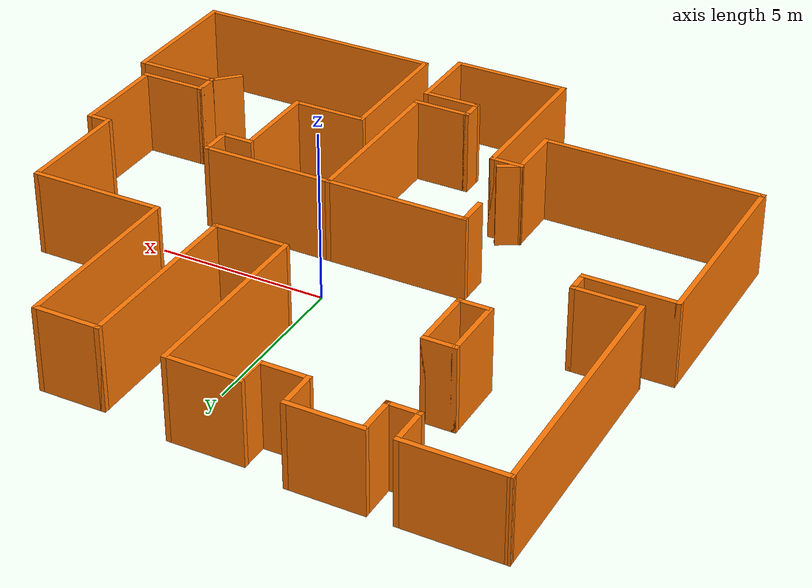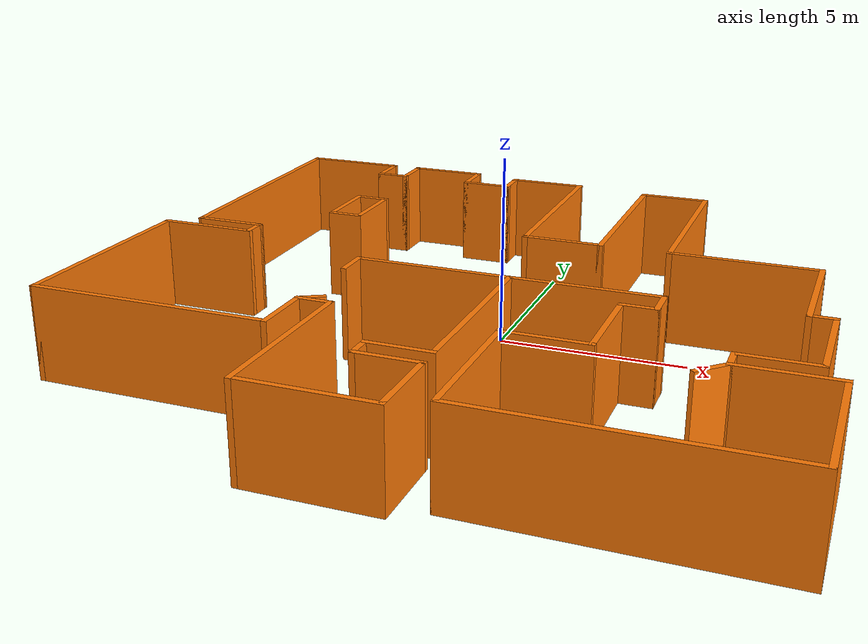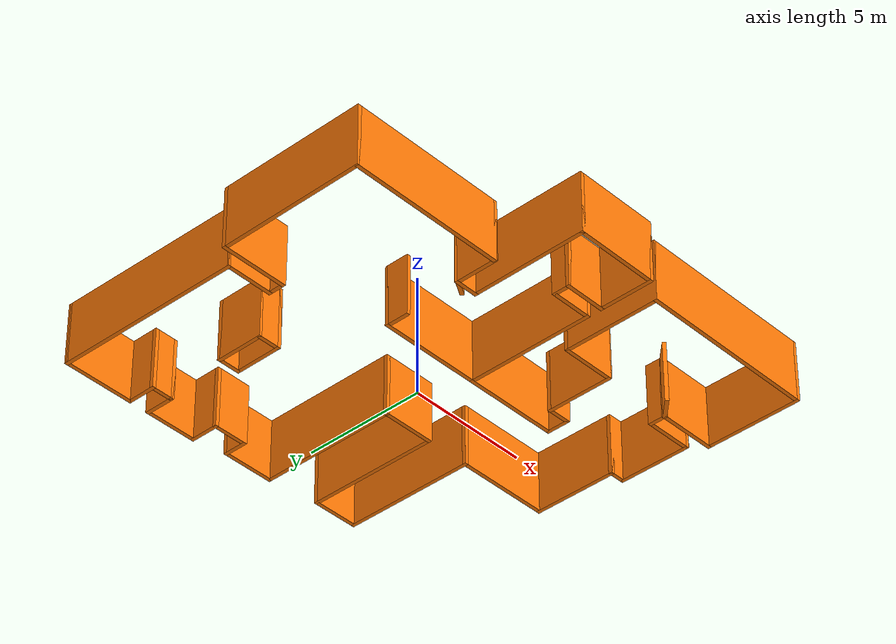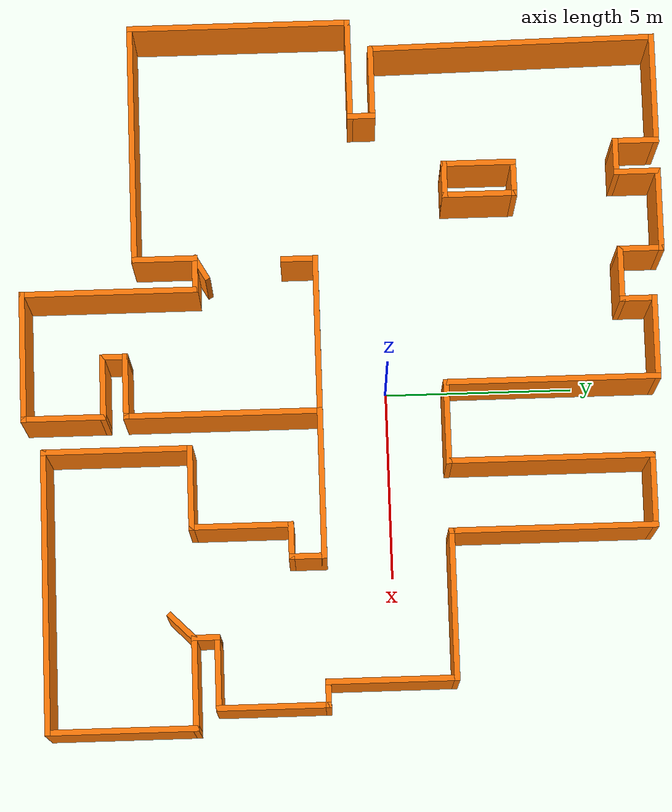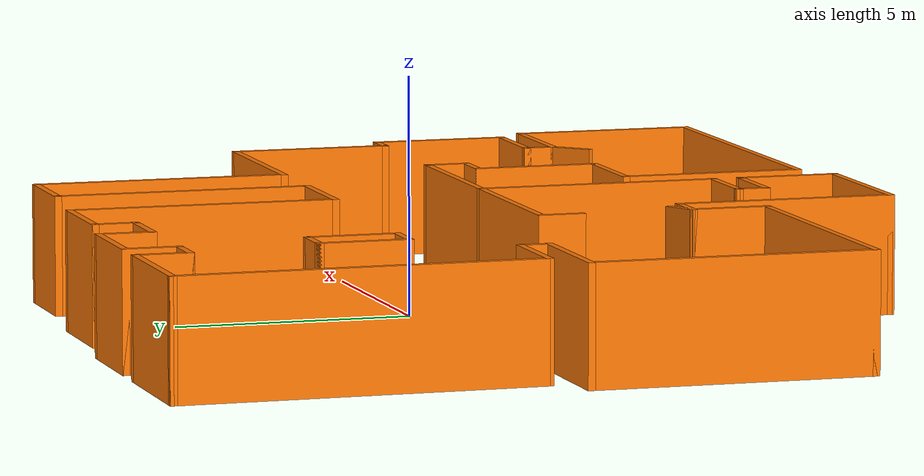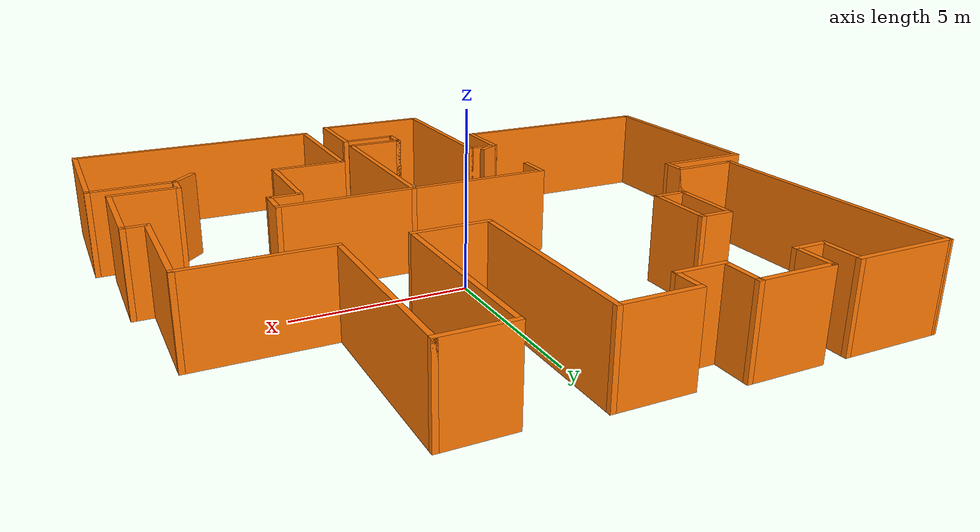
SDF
<?xml version='1.0'?>
<sdf version='1.6'>
  <model name='map_114'>
    <pose frame=''>-0.377222 -1.09087 0 0 -0 0</pose>
    <link name='Wall_13'>
      <collision name='Wall_13_Collision'>
        <geometry>
          <box>
            <size>2 0.15 2.5</size>
          </box>
        </geometry>
        <pose frame=''>0 0 1.25 0 -0 0</pose>
      </collision>
      <visual name='Wall_13_Visual'>
        <pose frame=''>0 0 1.25 0 -0 0</pose>
        <geometry>
          <box>
            <size>2 0.15 2.5</size>
          </box>
        </geometry>
        <material>
          <script>
            <uri>file://media/materials/scripts/gazebo.material</uri>
            <name>Gazebo/Grey</name>
          </script>
          <ambient>0.996078 0.47451 0.0196078 1</ambient>
        </material>
        <meta>
          <layer>0</layer>
        </meta>
      </visual>
      <pose frame=''>-7.725 0.949507 0 0 -0 0</pose>
    </link>
    <link name='Wall_14'>
      <collision name='Wall_14_Collision'>
        <geometry>
          <box>
            <size>0.75 0.15 2.5</size>
          </box>
        </geometry>
        <pose frame=''>0 0 1.25 0 -0 0</pose>
      </collision>
      <visual name='Wall_14_Visual'>
        <pose frame=''>0 0 1.25 0 -0 0</pose>
        <geometry>
          <box>
            <size>0.75 0.15 2.5</size>
          </box>
        </geometry>
        <material>
          <script>
            <uri>file://media/materials/scripts/gazebo.material</uri>
            <name>Gazebo/Grey</name>
          </script>
          <ambient>0.996078 0.47451 0.0196078 1</ambient>
        </material>
        <meta>
          <layer>0</layer>
        </meta>
      </visual>
      <pose frame=''>-6.8 0.649507 0 0 -0 -1.5708</pose>
    </link>
    <link name='Wall_15'>
      <collision name='Wall_15_Collision'>
        <geometry>
          <box>
            <size>2.75 0.15 2.5</size>
          </box>
        </geometry>
        <pose frame=''>0 0 1.25 0 -0 0</pose>
      </collision>
      <visual name='Wall_15_Visual'>
        <pose frame=''>0 0 1.25 0 -0 0</pose>
        <geometry>
          <box>
            <size>2.75 0.15 2.5</size>
          </box>
        </geometry>
        <material>
          <script>
            <uri>file://media/materials/scripts/gazebo.material</uri>
            <name>Gazebo/Grey</name>
          </script>
          <ambient>0.996078 0.47451 0.0196078 1</ambient>
        </material>
        <meta>
          <layer>0</layer>
        </meta>
      </visual>
      <pose frame=''>-8.1 0.349507 0 0 -0 3.14159</pose>
    </link>
    <link name='Wall_16'>
      <collision name='Wall_16_Collision'>
        <geometry>
          <box>
            <size>6 0.15 2.5</size>
          </box>
        </geometry>
        <pose frame=''>0 0 1.25 0 -0 0</pose>
      </collision>
      <visual name='Wall_16_Visual'>
        <pose frame=''>0 0 1.25 0 -0 0</pose>
        <geometry>
          <box>
            <size>6 0.15 2.5</size>
          </box>
        </geometry>
        <material>
          <script>
            <uri>file://media/materials/scripts/gazebo.material</uri>
            <name>Gazebo/Grey</name>
          </script>
          <ambient>0.996078 0.47451 0.0196078 1</ambient>
        </material>
        <meta>
          <layer>0</layer>
        </meta>
      </visual>
      <pose frame=''>-9.4 -2.57549 0 0 -0 -1.5708</pose>
    </link>
    <link name='Wall_17'>
      <collision name='Wall_17_Collision'>
        <geometry>
          <box>
            <size>6.5 0.15 2.5</size>
          </box>
        </geometry>
        <pose frame=''>0 0 1.25 0 -0 0</pose>
      </collision>
      <visual name='Wall_17_Visual'>
        <pose frame=''>0 0 1.25 0 -0 0</pose>
        <geometry>
          <box>
            <size>6.5 0.15 2.5</size>
          </box>
        </geometry>
        <material>
          <script>
            <uri>file://media/materials/scripts/gazebo.material</uri>
            <name>Gazebo/Grey</name>
          </script>
          <ambient>0.996078 0.47451 0.0196078 1</ambient>
        </material>
        <meta>
          <layer>0</layer>
        </meta>
      </visual>
      <pose frame=''>-6.225 -5.50049 0 0 -0 0</pose>
    </link>
    <link name='Wall_21'>
      <collision name='Wall_21_Collision'>
        <geometry>
          <box>
            <size>3.5 0.15 2.5</size>
          </box>
        </geometry>
        <pose frame=''>0 0 1.25 0 -0 0</pose>
      </collision>
      <visual name='Wall_21_Visual'>
        <pose frame=''>0 0 1.25 0 -0 0</pose>
        <geometry>
          <box>
            <size>3.5 0.15 2.5</size>
          </box>
        </geometry>
        <material>
          <script>
            <uri>file://media/materials/scripts/gazebo.material</uri>
            <name>Gazebo/Grey</name>
          </script>
          <ambient>0.996078 0.47451 0.0196078 1</ambient>
        </material>
        <meta>
          <layer>0</layer>
        </meta>
      </visual>
      <pose frame=''>-0.525 -8.50049 0 0 -0 0</pose>
    </link>
    <link name='Wall_22'>
      <collision name='Wall_22_Collision'>
        <geometry>
          <box>
            <size>2.25 0.15 2.5</size>
          </box>
        </geometry>
        <pose frame=''>0 0 1.25 0 -0 0</pose>
      </collision>
      <visual name='Wall_22_Visual'>
        <pose frame=''>0 0 1.25 0 -0 0</pose>
        <geometry>
          <box>
            <size>2.25 0.15 2.5</size>
          </box>
        </geometry>
        <material>
          <script>
            <uri>file://media/materials/scripts/gazebo.material</uri>
            <name>Gazebo/Grey</name>
          </script>
          <ambient>0.996078 0.47451 0.0196078 1</ambient>
        </material>
        <meta>
          <layer>0</layer>
        </meta>
      </visual>
      <pose frame=''>1.15 -7.45049 0 0 -0 1.5708</pose>
    </link>
    <link name='Wall_23'>
      <collision name='Wall_23_Collision'>
        <geometry>
          <box>
            <size>1.75 0.15 2.5</size>
          </box>
        </geometry>
        <pose frame=''>0 0 1.25 0 -0 0</pose>
      </collision>
      <visual name='Wall_23_Visual'>
        <pose frame=''>0 0 1.25 0 -0 0</pose>
        <geometry>
          <box>
            <size>1.75 0.15 2.5</size>
          </box>
        </geometry>
        <material>
          <script>
            <uri>file://media/materials/scripts/gazebo.material</uri>
            <name>Gazebo/Grey</name>
          </script>
          <ambient>0.996078 0.47451 0.0196078 1</ambient>
        </material>
        <meta>
          <layer>0</layer>
        </meta>
      </visual>
      <pose frame=''>0.35 -6.40049 0 0 -0 3.14159</pose>
    </link>
    <link name='Wall_24'>
      <collision name='Wall_24_Collision'>
        <geometry>
          <box>
            <size>0.75 0.15 2.5</size>
          </box>
        </geometry>
        <pose frame=''>0 0 1.25 0 -0 0</pose>
      </collision>
      <visual name='Wall_24_Visual'>
        <pose frame=''>0 0 1.25 0 -0 0</pose>
        <geometry>
          <box>
            <size>0.75 0.15 2.5</size>
          </box>
        </geometry>
        <material>
          <script>
            <uri>file://media/materials/scripts/gazebo.material</uri>
            <name>Gazebo/Grey</name>
          </script>
          <ambient>0.996078 0.47451 0.0196078 1</ambient>
        </material>
        <meta>
          <layer>0</layer>
        </meta>
      </visual>
      <pose frame=''>-0.45 -6.10049 0 0 -0 1.5708</pose>
    </link>
    <link name='Wall_25'>
      <collision name='Wall_25_Collision'>
        <geometry>
          <box>
            <size>1.75 0.15 2.5</size>
          </box>
        </geometry>
        <pose frame=''>0 0 1.25 0 -0 0</pose>
      </collision>
      <visual name='Wall_25_Visual'>
        <pose frame=''>0 0 1.25 0 -0 0</pose>
        <geometry>
          <box>
            <size>1.75 0.15 2.5</size>
          </box>
        </geometry>
        <material>
          <script>
            <uri>file://media/materials/scripts/gazebo.material</uri>
            <name>Gazebo/Grey</name>
          </script>
          <ambient>0.996078 0.47451 0.0196078 1</ambient>
        </material>
        <meta>
          <layer>0</layer>
        </meta>
      </visual>
      <pose frame=''>0.35 -5.80049 0 0 -0 0</pose>
    </link>
    <link name='Wall_26'>
      <collision name='Wall_26_Collision'>
        <geometry>
          <box>
            <size>5.25 0.15 2.5</size>
          </box>
        </geometry>
        <pose frame=''>0 0 1.25 0 -0 0</pose>
      </collision>
      <visual name='Wall_26_Visual'>
        <pose frame=''>0 0 1.25 0 -0 0</pose>
        <geometry>
          <box>
            <size>5.25 0.15 2.5</size>
          </box>
        </geometry>
        <material>
          <script>
            <uri>file://media/materials/scripts/gazebo.material</uri>
            <name>Gazebo/Grey</name>
          </script>
          <ambient>0.996078 0.47451 0.0196078 1</ambient>
        </material>
        <meta>
          <layer>0</layer>
        </meta>
      </visual>
      <pose frame=''>1.15 -3.25049 0 0 -0 1.5708</pose>
    </link>
    <link name='Wall_27'>
      <collision name='Wall_27_Collision'>
        <geometry>
          <box>
            <size>4.25 0.15 2.5</size>
          </box>
        </geometry>
        <pose frame=''>0 0 1.25 0 -0 0</pose>
      </collision>
      <visual name='Wall_27_Visual'>
        <pose frame=''>0 0 1.25 0 -0 0</pose>
        <geometry>
          <box>
            <size>4.25 0.15 2.5</size>
          </box>
        </geometry>
        <material>
          <script>
            <uri>file://media/materials/scripts/gazebo.material</uri>
            <name>Gazebo/Grey</name>
          </script>
          <ambient>0.996078 0.47451 0.0196078 1</ambient>
        </material>
        <meta>
          <layer>0</layer>
        </meta>
      </visual>
      <pose frame=''>-0.9 -0.700493 0 0 -0 3.14159</pose>
    </link>
    <link name='Wall_28'>
      <collision name='Wall_28_Collision'>
        <geometry>
          <box>
            <size>1 0.15 2.5</size>
          </box>
        </geometry>
        <pose frame=''>0 0 1.25 0 -0 0</pose>
      </collision>
      <visual name='Wall_28_Visual'>
        <pose frame=''>0 0 1.25 0 -0 0</pose>
        <geometry>
          <box>
            <size>1 0.15 2.5</size>
          </box>
        </geometry>
        <material>
          <script>
            <uri>file://media/materials/scripts/gazebo.material</uri>
            <name>Gazebo/Grey</name>
          </script>
          <ambient>0.996078 0.47451 0.0196078 1</ambient>
        </material>
        <meta>
          <layer>0</layer>
        </meta>
      </visual>
      <pose frame=''>-2.95 -1.12549 0 0 -0 -1.5708</pose>
    </link>
    <link name='Wall_30'>
      <collision name='Wall_30_Collision'>
        <geometry>
          <box>
            <size>1.75 0.15 2.5</size>
          </box>
        </geometry>
        <pose frame=''>0 0 1.25 0 -0 0</pose>
      </collision>
      <visual name='Wall_30_Visual'>
        <pose frame=''>0 0 1.25 0 -0 0</pose>
        <geometry>
          <box>
            <size>1.75 0.15 2.5</size>
          </box>
        </geometry>
        <material>
          <script>
            <uri>file://media/materials/scripts/gazebo.material</uri>
            <name>Gazebo/Grey</name>
          </script>
          <ambient>0.996078 0.47451 0.0196078 1</ambient>
        </material>
        <meta>
          <layer>0</layer>
        </meta>
      </visual>
      <pose frame=''>-3.05 -4.70049 0 0 -0 1.5708</pose>
    </link>
    <link name='Wall_31'>
      <collision name='Wall_31_Collision'>
        <geometry>
          <box>
            <size>1 0.15 2.5</size>
          </box>
        </geometry>
        <pose frame=''>0 0 1.25 0 -0 0</pose>
      </collision>
      <visual name='Wall_31_Visual'>
        <pose frame=''>0 0 1.25 0 -0 0</pose>
        <geometry>
          <box>
            <size>1 0.15 2.5</size>
          </box>
        </geometry>
        <material>
          <script>
            <uri>file://media/materials/scripts/gazebo.material</uri>
            <name>Gazebo/Grey</name>
          </script>
          <ambient>0.996078 0.47451 0.0196078 1</ambient>
        </material>
        <meta>
          <layer>0</layer>
        </meta>
      </visual>
      <pose frame=''>-2.625 -3.90049 0 0 -0 0</pose>
    </link>
    <link name='Wall_33'>
      <collision name='Wall_33_Collision'>
        <geometry>
          <box>
            <size>4.75 0.15 2.5</size>
          </box>
        </geometry>
        <pose frame=''>0 0 1.25 0 -0 0</pose>
      </collision>
      <visual name='Wall_33_Visual'>
        <pose frame=''>0 0 1.25 0 -0 0</pose>
        <geometry>
          <box>
            <size>4.75 0.15 2.5</size>
          </box>
        </geometry>
        <material>
          <script>
            <uri>file://media/materials/scripts/gazebo.material</uri>
            <name>Gazebo/Grey</name>
          </script>
          <ambient>0.996078 0.47451 0.0196078 1</ambient>
        </material>
        <meta>
          <layer>0</layer>
        </meta>
      </visual>
      <pose frame=''>-2.2 -6.20049 0 0 -0 -1.5708</pose>
    </link>
    <link name='Wall_39'>
      <collision name='Wall_39_Collision'>
        <geometry>
          <box>
            <size>4 0.15 2.5</size>
          </box>
        </geometry>
        <pose frame=''>0 0 1.25 0 -0 0</pose>
      </collision>
      <visual name='Wall_39_Visual'>
        <pose frame=''>0 0 1.25 0 -0 0</pose>
        <geometry>
          <box>
            <size>4 0.15 2.5</size>
          </box>
        </geometry>
        <material>
          <script>
            <uri>file://media/materials/scripts/gazebo.material</uri>
            <name>Gazebo/Grey</name>
          </script>
          <ambient>0.996078 0.47451 0.0196078 1</ambient>
        </material>
        <meta>
          <layer>0</layer>
        </meta>
      </visual>
      <pose frame=''>3.075 -0.700493 0 0 -0 0</pose>
    </link>
    <link name='Wall_40'>
      <collision name='Wall_40_Collision'>
        <geometry>
          <box>
            <size>1 0.15 2.5</size>
          </box>
        </geometry>
        <pose frame=''>0 0 1.25 0 -0 0</pose>
      </collision>
      <visual name='Wall_40_Visual'>
        <pose frame=''>0 0 1.25 0 -0 0</pose>
        <geometry>
          <box>
            <size>1 0.15 2.5</size>
          </box>
        </geometry>
        <material>
          <script>
            <uri>file://media/materials/scripts/gazebo.material</uri>
            <name>Gazebo/Grey</name>
          </script>
          <ambient>0.996078 0.47451 0.0196078 1</ambient>
        </material>
        <meta>
          <layer>0</layer>
        </meta>
      </visual>
      <pose frame=''>5 -1.12549 0 0 -0 -1.5708</pose>
    </link>
    <link name='Wall_41'>
      <collision name='Wall_41_Collision'>
        <geometry>
          <box>
            <size>1 0.15 2.5</size>
          </box>
        </geometry>
        <pose frame=''>0 0 1.25 0 -0 0</pose>
      </collision>
      <visual name='Wall_41_Visual'>
        <pose frame=''>0 0 1.25 0 -0 0</pose>
        <geometry>
          <box>
            <size>1 0.15 2.5</size>
          </box>
        </geometry>
        <material>
          <script>
            <uri>file://media/materials/scripts/gazebo.material</uri>
            <name>Gazebo/Grey</name>
          </script>
          <ambient>0.996078 0.47451 0.0196078 1</ambient>
        </material>
        <meta>
          <layer>0</layer>
        </meta>
      </visual>
      <pose frame=''>4.575 -1.55049 0 0 -0 3.14159</pose>
    </link>
    <link name='Wall_42'>
      <collision name='Wall_42_Collision'>
        <geometry>
          <box>
            <size>2.75 0.15 2.5</size>
          </box>
        </geometry>
        <pose frame=''>0 0 1.25 0 -0 0</pose>
      </collision>
      <visual name='Wall_42_Visual'>
        <pose frame=''>0 0 1.25 0 -0 0</pose>
        <geometry>
          <box>
            <size>2.75 0.15 2.5</size>
          </box>
        </geometry>
        <material>
          <script>
            <uri>file://media/materials/scripts/gazebo.material</uri>
            <name>Gazebo/Grey</name>
          </script>
          <ambient>0.996078 0.47451 0.0196078 1</ambient>
        </material>
        <meta>
          <layer>0</layer>
        </meta>
      </visual>
      <pose frame=''>4.15 -2.85049 0 0 -0 -1.5708</pose>
    </link>
    <link name='Wall_43'>
      <collision name='Wall_43_Collision'>
        <geometry>
          <box>
            <size>2.25 0.15 2.5</size>
          </box>
        </geometry>
        <pose frame=''>0 0 1.25 0 -0 0</pose>
      </collision>
      <visual name='Wall_43_Visual'>
        <pose frame=''>0 0 1.25 0 -0 0</pose>
        <geometry>
          <box>
            <size>2.25 0.15 2.5</size>
          </box>
        </geometry>
        <material>
          <script>
            <uri>file://media/materials/scripts/gazebo.material</uri>
            <name>Gazebo/Grey</name>
          </script>
          <ambient>0.996078 0.47451 0.0196078 1</ambient>
        </material>
        <meta>
          <layer>0</layer>
        </meta>
      </visual>
      <pose frame=''>3.1 -4.15049 0 0 -0 3.14159</pose>
    </link>
    <link name='Wall_44'>
      <collision name='Wall_44_Collision'>
        <geometry>
          <box>
            <size>4 0.15 2.5</size>
          </box>
        </geometry>
        <pose frame=''>0 0 1.25 0 -0 0</pose>
      </collision>
      <visual name='Wall_44_Visual'>
        <pose frame=''>0 0 1.25 0 -0 0</pose>
        <geometry>
          <box>
            <size>4 0.15 2.5</size>
          </box>
        </geometry>
        <material>
          <script>
            <uri>file://media/materials/scripts/gazebo.material</uri>
            <name>Gazebo/Grey</name>
          </script>
          <ambient>0.996078 0.47451 0.0196078 1</ambient>
        </material>
        <meta>
          <layer>0</layer>
        </meta>
      </visual>
      <pose frame=''>2.05 -6.07549 0 0 -0 -1.5708</pose>
    </link>
    <link name='Wall_45'>
      <collision name='Wall_45_Collision'>
        <geometry>
          <box>
            <size>7.5 0.15 2.5</size>
          </box>
        </geometry>
        <pose frame=''>0 0 1.25 0 -0 0</pose>
      </collision>
      <visual name='Wall_45_Visual'>
        <pose frame=''>0 0 1.25 0 -0 0</pose>
        <geometry>
          <box>
            <size>7.5 0.15 2.5</size>
          </box>
        </geometry>
        <material>
          <script>
            <uri>file://media/materials/scripts/gazebo.material</uri>
            <name>Gazebo/Grey</name>
          </script>
          <ambient>0.996078 0.47451 0.0196078 1</ambient>
        </material>
        <meta>
          <layer>0</layer>
        </meta>
      </visual>
      <pose frame=''>5.725 -8.00049 0 0 -0 0</pose>
    </link>
    <link name='Wall_46'>
      <collision name='Wall_46_Collision'>
        <geometry>
          <box>
            <size>4 0.15 2.5</size>
          </box>
        </geometry>
        <pose frame=''>0 0 1.25 0 -0 0</pose>
      </collision>
      <visual name='Wall_46_Visual'>
        <pose frame=''>0 0 1.25 0 -0 0</pose>
        <geometry>
          <box>
            <size>4 0.15 2.5</size>
          </box>
        </geometry>
        <material>
          <script>
            <uri>file://media/materials/scripts/gazebo.material</uri>
            <name>Gazebo/Grey</name>
          </script>
          <ambient>0.996078 0.47451 0.0196078 1</ambient>
        </material>
        <meta>
          <layer>0</layer>
        </meta>
      </visual>
      <pose frame=''>9.4 -6.07549 0 0 -0 1.5708</pose>
    </link>
    <link name='Wall_47'>
      <collision name='Wall_47_Collision'>
        <geometry>
          <box>
            <size>2.5 0.15 2.5</size>
          </box>
        </geometry>
        <pose frame=''>0 0 1.25 0 -0 0</pose>
      </collision>
      <visual name='Wall_47_Visual'>
        <pose frame=''>0 0 1.25 0 -0 0</pose>
        <geometry>
          <box>
            <size>2.5 0.15 2.5</size>
          </box>
        </geometry>
        <material>
          <script>
            <uri>file://media/materials/scripts/gazebo.material</uri>
            <name>Gazebo/Grey</name>
          </script>
          <ambient>0.996078 0.47451 0.0196078 1</ambient>
        </material>
        <meta>
          <layer>0</layer>
        </meta>
      </visual>
      <pose frame=''>8.225 -4.15049 0 0 -0 3.14159</pose>
    </link>
    <link name='Wall_48'>
      <collision name='Wall_48_Collision'>
        <geometry>
          <box>
            <size>0.75 0.15 2.5</size>
          </box>
        </geometry>
        <pose frame=''>0 0 1.25 0 -0 0</pose>
      </collision>
      <visual name='Wall_48_Visual'>
        <pose frame=''>0 0 1.25 0 -0 0</pose>
        <geometry>
          <box>
            <size>0.75 0.15 2.5</size>
          </box>
        </geometry>
        <material>
          <script>
            <uri>file://media/materials/scripts/gazebo.material</uri>
            <name>Gazebo/Grey</name>
          </script>
          <ambient>0.996078 0.47451 0.0196078 1</ambient>
        </material>
        <meta>
          <layer>0</layer>
        </meta>
      </visual>
      <pose frame=''>7.05 -3.85049 0 0 -0 1.5708</pose>
    </link>
    <link name='Wall_49'>
      <collision name='Wall_49_Collision'>
        <geometry>
          <box>
            <size>2 0.15 2.5</size>
          </box>
        </geometry>
        <pose frame=''>0 0 1.25 0 -0 0</pose>
      </collision>
      <visual name='Wall_49_Visual'>
        <pose frame=''>0 0 1.25 0 -0 0</pose>
        <geometry>
          <box>
            <size>2 0.15 2.5</size>
          </box>
        </geometry>
        <material>
          <script>
            <uri>file://media/materials/scripts/gazebo.material</uri>
            <name>Gazebo/Grey</name>
          </script>
          <ambient>0.996078 0.47451 0.0196078 1</ambient>
        </material>
        <meta>
          <layer>0</layer>
        </meta>
      </visual>
      <pose frame=''>7.975 -3.55049 0 0 -0 0</pose>
    </link>
    <link name='Wall_50'>
      <collision name='Wall_50_Collision'>
        <geometry>
          <box>
            <size>3 0.15 2.5</size>
          </box>
        </geometry>
        <pose frame=''>0 0 1.25 0 -0 0</pose>
      </collision>
      <visual name='Wall_50_Visual'>
        <pose frame=''>0 0 1.25 0 -0 0</pose>
        <geometry>
          <box>
            <size>3 0.15 2.5</size>
          </box>
        </geometry>
        <material>
          <script>
            <uri>file://media/materials/scripts/gazebo.material</uri>
            <name>Gazebo/Grey</name>
          </script>
          <ambient>0.996078 0.47451 0.0196078 1</ambient>
        </material>
        <meta>
          <layer>0</layer>
        </meta>
      </visual>
      <pose frame=''>8.9 -2.12549 0 0 -0 1.5708</pose>
    </link>
    <link name='Wall_51'>
      <collision name='Wall_51_Collision'>
        <geometry>
          <box>
            <size>0.75 0.15 2.5</size>
          </box>
        </geometry>
        <pose frame=''>0 0 1.25 0 -0 0</pose>
      </collision>
      <visual name='Wall_51_Visual'>
        <pose frame=''>0 0 1.25 0 -0 0</pose>
        <geometry>
          <box>
            <size>0.75 0.15 2.5</size>
          </box>
        </geometry>
        <material>
          <script>
            <uri>file://media/materials/scripts/gazebo.material</uri>
            <name>Gazebo/Grey</name>
          </script>
          <ambient>0.996078 0.47451 0.0196078 1</ambient>
        </material>
        <meta>
          <layer>0</layer>
        </meta>
      </visual>
      <pose frame=''>8.6 -0.700493 0 0 -0 3.14159</pose>
    </link>
    <link name='Wall_57'>
      <collision name='Wall_57_Collision'>
        <geometry>
          <box>
            <size>3.5 0.15 2.5</size>
          </box>
        </geometry>
        <pose frame=''>0 0 1.25 0 -0 0</pose>
      </collision>
      <visual name='Wall_57_Visual'>
        <pose frame=''>0 0 1.25 0 -0 0</pose>
        <geometry>
          <box>
            <size>3.5 0.15 2.5</size>
          </box>
        </geometry>
        <material>
          <script>
            <uri>file://media/materials/scripts/gazebo.material</uri>
            <name>Gazebo/Grey</name>
          </script>
          <ambient>0.996078 0.47451 0.0196078 1</ambient>
        </material>
        <meta>
          <layer>0</layer>
        </meta>
      </visual>
      <pose frame=''>8.3 0.974507 0 0 -0 1.5708</pose>
    </link>
    <link name='Wall_58'>
      <collision name='Wall_58_Collision'>
        <geometry>
          <box>
            <size>4 0.15 2.5</size>
          </box>
        </geometry>
        <pose frame=''>0 0 1.25 0 -0 0</pose>
      </collision>
      <visual name='Wall_58_Visual'>
        <pose frame=''>0 0 1.25 0 -0 0</pose>
        <geometry>
          <box>
            <size>4 0.15 2.5</size>
          </box>
        </geometry>
        <material>
          <script>
            <uri>file://media/materials/scripts/gazebo.material</uri>
            <name>Gazebo/Grey</name>
          </script>
          <ambient>0.996078 0.47451 0.0196078 1</ambient>
        </material>
        <meta>
          <layer>0</layer>
        </meta>
      </visual>
      <pose frame=''>6.375 2.64951 0 0 -0 3.14159</pose>
    </link>
    <link name='Wall_59'>
      <collision name='Wall_59_Collision'>
        <geometry>
          <box>
            <size>5.5 0.15 2.5</size>
          </box>
        </geometry>
        <pose frame=''>0 0 1.25 0 -0 0</pose>
      </collision>
      <visual name='Wall_59_Visual'>
        <pose frame=''>0 0 1.25 0 -0 0</pose>
        <geometry>
          <box>
            <size>5.5 0.15 2.5</size>
          </box>
        </geometry>
        <material>
          <script>
            <uri>file://media/materials/scripts/gazebo.material</uri>
            <name>Gazebo/Grey</name>
          </script>
          <ambient>0.996078 0.47451 0.0196078 1</ambient>
        </material>
        <meta>
          <layer>0</layer>
        </meta>
      </visual>
      <pose frame=''>4.45 5.32451 0 0 -0 1.5708</pose>
    </link>
    <link name='Wall_60'>
      <collision name='Wall_60_Collision'>
        <geometry>
          <box>
            <size>2 0.15 2.5</size>
          </box>
        </geometry>
        <pose frame=''>0 0 1.25 0 -0 0</pose>
      </collision>
      <visual name='Wall_60_Visual'>
        <pose frame=''>0 0 1.25 0 -0 0</pose>
        <geometry>
          <box>
            <size>2 0.15 2.5</size>
          </box>
        </geometry>
        <material>
          <script>
            <uri>file://media/materials/scripts/gazebo.material</uri>
            <name>Gazebo/Grey</name>
          </script>
          <ambient>0.996078 0.47451 0.0196078 1</ambient>
        </material>
        <meta>
          <layer>0</layer>
        </meta>
      </visual>
      <pose frame=''>3.525 7.99951 0 0 -0 3.14159</pose>
    </link>
    <link name='Wall_61'>
      <collision name='Wall_61_Collision'>
        <geometry>
          <box>
            <size>5.5 0.15 2.5</size>
          </box>
        </geometry>
        <pose frame=''>0 0 1.25 0 -0 0</pose>
      </collision>
      <visual name='Wall_61_Visual'>
        <pose frame=''>0 0 1.25 0 -0 0</pose>
        <geometry>
          <box>
            <size>5.5 0.15 2.5</size>
          </box>
        </geometry>
        <material>
          <script>
            <uri>file://media/materials/scripts/gazebo.material</uri>
            <name>Gazebo/Grey</name>
          </script>
          <ambient>0.996078 0.47451 0.0196078 1</ambient>
        </material>
        <meta>
          <layer>0</layer>
        </meta>
      </visual>
      <pose frame=''>2.6 5.32451 0 0 -0 -1.5708</pose>
    </link>
    <link name='Wall_62'>
      <collision name='Wall_62_Collision'>
        <geometry>
          <box>
            <size>2.25 0.15 2.5</size>
          </box>
        </geometry>
        <pose frame=''>0 0 1.25 0 -0 0</pose>
      </collision>
      <visual name='Wall_62_Visual'>
        <pose frame=''>0 0 1.25 0 -0 0</pose>
        <geometry>
          <box>
            <size>2.25 0.15 2.5</size>
          </box>
        </geometry>
        <material>
          <script>
            <uri>file://media/materials/scripts/gazebo.material</uri>
            <name>Gazebo/Grey</name>
          </script>
          <ambient>0.996078 0.47451 0.0196078 1</ambient>
        </material>
        <meta>
          <layer>0</layer>
        </meta>
      </visual>
      <pose frame=''>1.55 2.64951 0 0 -0 3.14159</pose>
    </link>
    <link name='Wall_63'>
      <collision name='Wall_63_Collision'>
        <geometry>
          <box>
            <size>5.75 0.15 2.5</size>
          </box>
        </geometry>
        <pose frame=''>0 0 1.25 0 -0 0</pose>
      </collision>
      <visual name='Wall_63_Visual'>
        <pose frame=''>0 0 1.25 0 -0 0</pose>
        <geometry>
          <box>
            <size>5.75 0.15 2.5</size>
          </box>
        </geometry>
        <material>
          <script>
            <uri>file://media/materials/scripts/gazebo.material</uri>
            <name>Gazebo/Grey</name>
          </script>
          <ambient>0.996078 0.47451 0.0196078 1</ambient>
        </material>
        <meta>
          <layer>0</layer>
        </meta>
      </visual>
      <pose frame=''>0.5 5.44951 0 0 -0 1.5708</pose>
    </link>
    <link name='Wall_64'>
      <collision name='Wall_64_Collision'>
        <geometry>
          <box>
            <size>2.25 0.15 2.5</size>
          </box>
        </geometry>
        <pose frame=''>0 0 1.25 0 -0 0</pose>
      </collision>
      <visual name='Wall_64_Visual'>
        <pose frame=''>0 0 1.25 0 -0 0</pose>
        <geometry>
          <box>
            <size>2.25 0.15 2.5</size>
          </box>
        </geometry>
        <material>
          <script>
            <uri>file://media/materials/scripts/gazebo.material</uri>
            <name>Gazebo/Grey</name>
          </script>
          <ambient>0.996078 0.47451 0.0196078 1</ambient>
        </material>
        <meta>
          <layer>0</layer>
        </meta>
      </visual>
      <pose frame=''>-0.55 8.24951 0 0 -0 3.14159</pose>
    </link>
    <link name='Wall_65'>
      <collision name='Wall_65_Collision'>
        <geometry>
          <box>
            <size>1 0.15 2.5</size>
          </box>
        </geometry>
        <pose frame=''>0 0 1.25 0 -0 0</pose>
      </collision>
      <visual name='Wall_65_Visual'>
        <pose frame=''>0 0 1.25 0 -0 0</pose>
        <geometry>
          <box>
            <size>1 0.15 2.5</size>
          </box>
        </geometry>
        <material>
          <script>
            <uri>file://media/materials/scripts/gazebo.material</uri>
            <name>Gazebo/Grey</name>
          </script>
          <ambient>0.996078 0.47451 0.0196078 1</ambient>
        </material>
        <meta>
          <layer>0</layer>
        </meta>
      </visual>
      <pose frame=''>-1.6 7.82451 0 0 -0 -1.5708</pose>
    </link>
    <link name='Wall_66'>
      <collision name='Wall_66_Collision'>
        <geometry>
          <box>
            <size>1.5 0.15 2.5</size>
          </box>
        </geometry>
        <pose frame=''>0 0 1.25 0 -0 0</pose>
      </collision>
      <visual name='Wall_66_Visual'>
        <pose frame=''>0 0 1.25 0 -0 0</pose>
        <geometry>
          <box>
            <size>1.5 0.15 2.5</size>
          </box>
        </geometry>
        <material>
          <script>
            <uri>file://media/materials/scripts/gazebo.material</uri>
            <name>Gazebo/Grey</name>
          </script>
          <ambient>0.996078 0.47451 0.0196078 1</ambient>
        </material>
        <meta>
          <layer>0</layer>
        </meta>
      </visual>
      <pose frame=''>-2.275 7.39951 0 0 -0 3.14159</pose>
    </link>
    <link name='Wall_67'>
      <collision name='Wall_67_Collision'>
        <geometry>
          <box>
            <size>1.25 0.15 2.5</size>
          </box>
        </geometry>
        <pose frame=''>0 0 1.25 0 -0 0</pose>
      </collision>
      <visual name='Wall_67_Visual'>
        <pose frame=''>0 0 1.25 0 -0 0</pose>
        <geometry>
          <box>
            <size>1.25 0.15 2.5</size>
          </box>
        </geometry>
        <material>
          <script>
            <uri>file://media/materials/scripts/gazebo.material</uri>
            <name>Gazebo/Grey</name>
          </script>
          <ambient>0.996078 0.47451 0.0196078 1</ambient>
        </material>
        <meta>
          <layer>0</layer>
        </meta>
      </visual>
      <pose frame=''>-2.95 7.94951 0 0 -0 1.5708</pose>
    </link>
    <link name='Wall_68'>
      <collision name='Wall_68_Collision'>
        <geometry>
          <box>
            <size>2.25 0.15 2.5</size>
          </box>
        </geometry>
        <pose frame=''>0 0 1.25 0 -0 0</pose>
      </collision>
      <visual name='Wall_68_Visual'>
        <pose frame=''>0 0 1.25 0 -0 0</pose>
        <geometry>
          <box>
            <size>2.25 0.15 2.5</size>
          </box>
        </geometry>
        <material>
          <script>
            <uri>file://media/materials/scripts/gazebo.material</uri>
            <name>Gazebo/Grey</name>
          </script>
          <ambient>0.996078 0.47451 0.0196078 1</ambient>
        </material>
        <meta>
          <layer>0</layer>
        </meta>
      </visual>
      <pose frame=''>-4 8.49951 0 0 -0 3.14159</pose>
    </link>
    <link name='Wall_69'>
      <collision name='Wall_69_Collision'>
        <geometry>
          <box>
            <size>1.25 0.15 2.5</size>
          </box>
        </geometry>
        <pose frame=''>0 0 1.25 0 -0 0</pose>
      </collision>
      <visual name='Wall_69_Visual'>
        <pose frame=''>0 0 1.25 0 -0 0</pose>
        <geometry>
          <box>
            <size>1.25 0.15 2.5</size>
          </box>
        </geometry>
        <material>
          <script>
            <uri>file://media/materials/scripts/gazebo.material</uri>
            <name>Gazebo/Grey</name>
          </script>
          <ambient>0.996078 0.47451 0.0196078 1</ambient>
        </material>
        <meta>
          <layer>0</layer>
        </meta>
      </visual>
      <pose frame=''>-5.05 7.94951 0 0 -0 -1.5708</pose>
    </link>
    <link name='Wall_70'>
      <collision name='Wall_70_Collision'>
        <geometry>
          <box>
            <size>1 0.15 2.5</size>
          </box>
        </geometry>
        <pose frame=''>0 0 1.25 0 -0 0</pose>
      </collision>
      <visual name='Wall_70_Visual'>
        <pose frame=''>0 0 1.25 0 -0 0</pose>
        <geometry>
          <box>
            <size>1 0.15 2.5</size>
          </box>
        </geometry>
        <material>
          <script>
            <uri>file://media/materials/scripts/gazebo.material</uri>
            <name>Gazebo/Grey</name>
          </script>
          <ambient>0.996078 0.47451 0.0196078 1</ambient>
        </material>
        <meta>
          <layer>0</layer>
        </meta>
      </visual>
      <pose frame=''>-5.475 7.39951 0 0 -0 3.14159</pose>
    </link>
    <link name='Wall_71'>
      <collision name='Wall_71_Collision'>
        <geometry>
          <box>
            <size>1.25 0.15 2.5</size>
          </box>
        </geometry>
        <pose frame=''>0 0 1.25 0 -0 0</pose>
      </collision>
      <visual name='Wall_71_Visual'>
        <pose frame=''>0 0 1.25 0 -0 0</pose>
        <geometry>
          <box>
            <size>1.25 0.15 2.5</size>
          </box>
        </geometry>
        <material>
          <script>
            <uri>file://media/materials/scripts/gazebo.material</uri>
            <name>Gazebo/Grey</name>
          </script>
          <ambient>0.996078 0.47451 0.0196078 1</ambient>
        </material>
        <meta>
          <layer>0</layer>
        </meta>
      </visual>
      <pose frame=''>-5.9 7.94951 0 0 -0 1.5708</pose>
    </link>
    <link name='Wall_72'>
      <collision name='Wall_72_Collision'>
        <geometry>
          <box>
            <size>3 0.15 2.5</size>
          </box>
        </geometry>
        <pose frame=''>0 0 1.25 0 -0 0</pose>
      </collision>
      <visual name='Wall_72_Visual'>
        <pose frame=''>0 0 1.25 0 -0 0</pose>
        <geometry>
          <box>
            <size>3 0.15 2.5</size>
          </box>
        </geometry>
        <material>
          <script>
            <uri>file://media/materials/scripts/gazebo.material</uri>
            <name>Gazebo/Grey</name>
          </script>
          <ambient>0.996078 0.47451 0.0196078 1</ambient>
        </material>
        <meta>
          <layer>0</layer>
        </meta>
      </visual>
      <pose frame=''>-7.325 8.49951 0 0 -0 3.14159</pose>
    </link>
    <link name='Wall_75'>
      <collision name='Wall_75_Collision'>
        <geometry>
          <box>
            <size>7.70066 0.15 2.5</size>
          </box>
        </geometry>
        <pose frame=''>0 0 1.25 0 -0 0</pose>
      </collision>
      <visual name='Wall_75_Visual'>
        <pose frame=''>0 0 1.25 0 -0 0</pose>
        <geometry>
          <box>
            <size>7.70066 0.15 2.5</size>
          </box>
        </geometry>
        <material>
          <script>
            <uri>file://media/materials/scripts/gazebo.material</uri>
            <name>Gazebo/Grey</name>
          </script>
          <ambient>0.996078 0.47451 0.0196078 1</ambient>
        </material>
        <meta>
          <layer>0</layer>
        </meta>
      </visual>
      <pose frame=''>-8.7 4.72451 0 0 -0 -1.55755</pose>
    </link>
    <link name='Wall_77'>
      <collision name='Wall_77_Collision'>
        <geometry>
          <box>
            <size>0.75 0.15 2.5</size>
          </box>
        </geometry>
        <pose frame=''>0 0 1.25 0 -0 0</pose>
      </collision>
      <visual name='Wall_77_Visual'>
        <pose frame=''>0 0 1.25 0 -0 0</pose>
        <geometry>
          <box>
            <size>0.75 0.15 2.5</size>
          </box>
        </geometry>
        <material>
          <script>
            <uri>file://media/materials/scripts/gazebo.material</uri>
            <name>Gazebo/Grey</name>
          </script>
          <ambient>0.996078 0.47451 0.0196078 1</ambient>
        </material>
        <meta>
          <layer>0</layer>
        </meta>
      </visual>
      <pose frame=''>-2.79019 -3.75049 0 0 -0 0.523599</pose>
    </link>
    <link name='Wall_79'>
      <collision name='Wall_79_Collision'>
        <geometry>
          <box>
            <size>1 0.15 2.5</size>
          </box>
        </geometry>
        <pose frame=''>0 0 1.25 0 -0 0</pose>
      </collision>
      <visual name='Wall_79_Visual'>
        <pose frame=''>0 0 1.25 0 -0 0</pose>
        <geometry>
          <box>
            <size>1 0.15 2.5</size>
          </box>
        </geometry>
        <material>
          <script>
            <uri>file://media/materials/scripts/gazebo.material</uri>
            <name>Gazebo/Grey</name>
          </script>
          <ambient>0.996078 0.47451 0.0196078 1</ambient>
        </material>
        <meta>
          <layer>0</layer>
        </meta>
      </visual>
      <pose frame=''>6.74948 -4.45101 0 0 -0 -2.35619</pose>
    </link>
    <link name='Wall_81'>
      <collision name='Wall_81_Collision'>
        <geometry>
          <box>
            <size>2 0.15 2.5</size>
          </box>
        </geometry>
        <pose frame=''>0 0 1.25 0 -0 0</pose>
      </collision>
      <visual name='Wall_81_Visual'>
        <pose frame=''>0 0 1.25 0 -0 0</pose>
        <geometry>
          <box>
            <size>2 0.15 2.5</size>
          </box>
        </geometry>
        <material>
          <script>
            <uri>file://media/materials/scripts/gazebo.material</uri>
            <name>Gazebo/Grey</name>
          </script>
          <ambient>0.996078 0.47451 0.0196078 1</ambient>
        </material>
        <meta>
          <layer>0</layer>
        </meta>
      </visual>
      <pose frame=''>-5.4155 3.72946 0 0 -0 -1.5708</pose>
    </link>
    <link name='Wall_82'>
      <collision name='Wall_82_Collision'>
        <geometry>
          <box>
            <size>1 0.15 2.5</size>
          </box>
        </geometry>
        <pose frame=''>0 0 1.25 0 -0 0</pose>
      </collision>
      <visual name='Wall_82_Visual'>
        <pose frame=''>0 0 1.25 0 -0 0</pose>
        <geometry>
          <box>
            <size>1 0.15 2.5</size>
          </box>
        </geometry>
        <material>
          <script>
            <uri>file://media/materials/scripts/gazebo.material</uri>
            <name>Gazebo/Grey</name>
          </script>
          <ambient>0.996078 0.47451 0.0196078 1</ambient>
        </material>
        <meta>
          <layer>0</layer>
        </meta>
      </visual>
      <pose frame=''>-4.9905 2.80446 0 0 -0 0</pose>
    </link>
    <link name='Wall_83'>
      <collision name='Wall_83_Collision'>
        <geometry>
          <box>
            <size>2 0.15 2.5</size>
          </box>
        </geometry>
        <pose frame=''>0 0 1.25 0 -0 0</pose>
      </collision>
      <visual name='Wall_83_Visual'>
        <pose frame=''>0 0 1.25 0 -0 0</pose>
        <geometry>
          <box>
            <size>2 0.15 2.5</size>
          </box>
        </geometry>
        <material>
          <script>
            <uri>file://media/materials/scripts/gazebo.material</uri>
            <name>Gazebo/Grey</name>
          </script>
          <ambient>0.996078 0.47451 0.0196078 1</ambient>
        </material>
        <meta>
          <layer>0</layer>
        </meta>
      </visual>
      <pose frame=''>-4.5655 3.72946 0 0 -0 1.5708</pose>
    </link>
    <link name='Wall_84'>
      <collision name='Wall_84_Collision'>
        <geometry>
          <box>
            <size>1 0.15 2.5</size>
          </box>
        </geometry>
        <pose frame=''>0 0 1.25 0 -0 0</pose>
      </collision>
      <visual name='Wall_84_Visual'>
        <pose frame=''>0 0 1.25 0 -0 0</pose>
        <geometry>
          <box>
            <size>1 0.15 2.5</size>
          </box>
        </geometry>
        <material>
          <script>
            <uri>file://media/materials/scripts/gazebo.material</uri>
            <name>Gazebo/Grey</name>
          </script>
          <ambient>0.996078 0.47451 0.0196078 1</ambient>
        </material>
        <meta>
          <layer>0</layer>
        </meta>
      </visual>
      <pose frame=''>-4.9905 4.65446 0 0 -0 3.14159</pose>
    </link>
    <static>1</static>
  </model>
</sdf>
